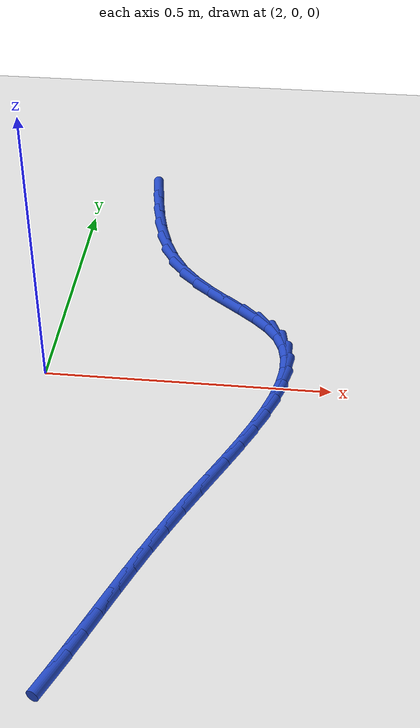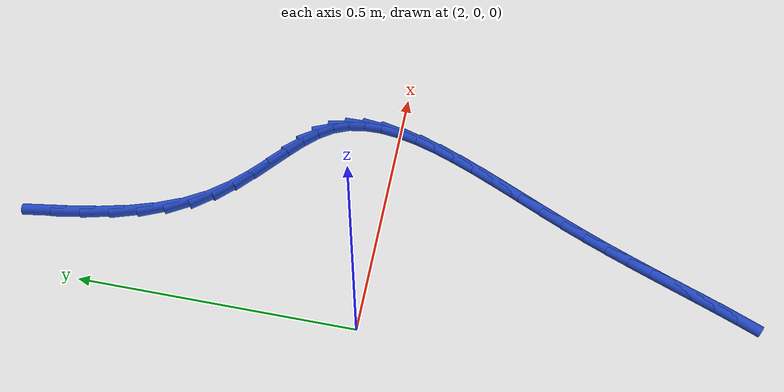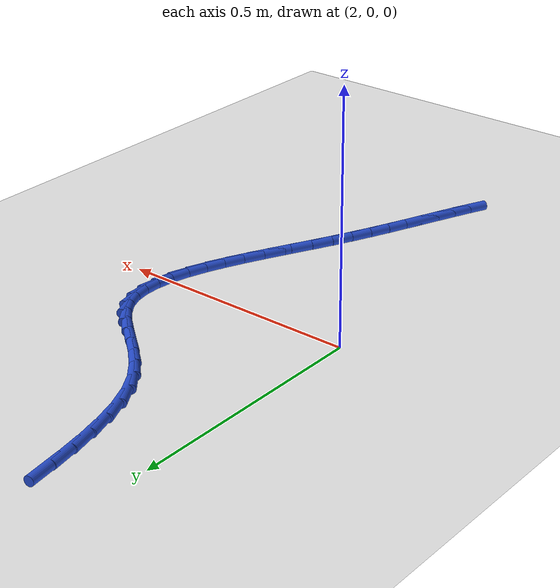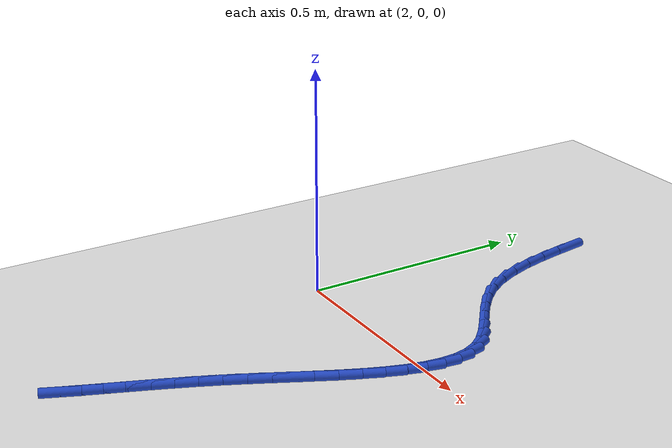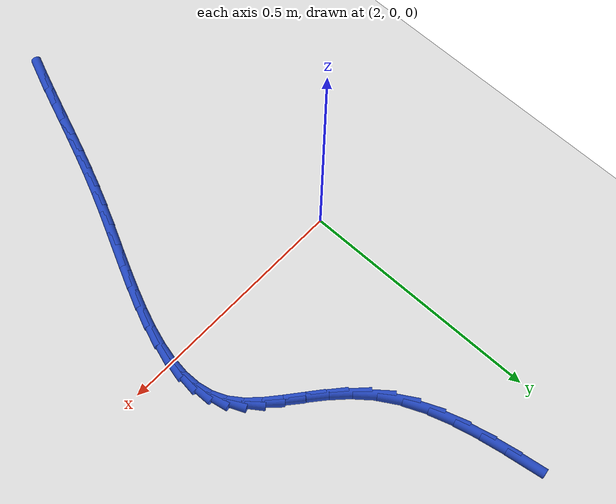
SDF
<sdf version="1.6">
 <world name="default">
  <model name="ground_plane">
   <static>1</static>
   <link name="link">
    <collision name="collision">
     <geometry><plane><normal>0 0 1</normal><size>100 100</size></plane></geometry>
     <surface><friction><ode><mu>100</mu><mu2>50</mu2></ode></friction></surface>
    </collision>
    <visual name="visual">
     <cast_shadows>0</cast_shadows>
     <geometry><plane><normal>0 0 1</normal><size>100 100</size></plane></geometry>
     <material>
      <script><uri>file://media/materials/scripts/gazebo.material</uri><name>Gazebo/WhiteGlow</name></script>
     </material>
    </visual>
   </link>
  </model>
  <model name="line">
   <link name="link_82">
    <pose>2.1171581020850545 0.6064458509517902 0.01 0 1.57 -1.4221488145944479</pose>
    <collision name="collision">
     <geometry><cylinder><radius>0.01</radius><length>0.08</length></cylinder></geometry>
    </collision>
    <visual name="visual">
     <material>
      <script><name>Gazebo/Blue</name><uri>file://media/materials/scripts/gazebo.material</uri></script>
     </material>
     <geometry><cylinder><radius>0.01</radius><length>0.08</length></cylinder></geometry>
    </visual>
   </link>
   <link name="link_83">
    <pose>2.1250702243144226 0.5536110577443482 0.01 0 1.57 -1.3852678850042155</pose>
    <collision name="collision">
     <geometry><cylinder><radius>0.01</radius><length>0.08</length></cylinder></geometry>
    </collision>
    <visual name="visual">
     <material>
      <script><name>Gazebo/Blue</name><uri>file://media/materials/scripts/gazebo.material</uri></script>
     </material>
     <geometry><cylinder><radius>0.01</radius><length>0.08</length></cylinder></geometry>
    </visual>
   </link>
   <link name="link_84">
    <pose>2.134866549538376 0.5014160021962345 0.01 0 1.57 -1.3313361154118093</pose>
    <collision name="collision">
     <geometry><cylinder><radius>0.01</radius><length>0.08</length></cylinder></geometry>
    </collision>
    <visual name="visual">
     <material>
      <script><name>Gazebo/Blue</name><uri>file://media/materials/scripts/gazebo.material</uri></script>
     </material>
     <geometry><cylinder><radius>0.01</radius><length>0.08</length></cylinder></geometry>
    </visual>
   </link>
   <link name="link_85">
    <pose>2.147190169371676 0.45093929036703095 0.01 0 1.57 -1.2566007854389787</pose>
    <collision name="collision">
     <geometry><cylinder><radius>0.01</radius><length>0.08</length></cylinder></geometry>
    </collision>
    <visual name="visual">
     <material>
      <script><name>Gazebo/Blue</name><uri>file://media/materials/scripts/gazebo.material</uri></script>
     </material>
     <geometry><cylinder><radius>0.01</radius><length>0.08</length></cylinder></geometry>
    </visual>
   </link>
   <link name="link_86">
    <pose>2.162684175429085 0.4032595283163211 0.01 0 1.57 -1.1556463646348278</pose>
    <collision name="collision">
     <geometry><cylinder><radius>0.01</radius><length>0.08</length></cylinder></geometry>
    </collision>
    <visual name="visual">
     <material>
      <script><name>Gazebo/Blue</name><uri>file://media/materials/scripts/gazebo.material</uri></script>
     </material>
     <geometry><cylinder><radius>0.01</radius><length>0.08</length></cylinder></geometry>
    </visual>
   </link>
   <link name="link_87">
    <pose>2.1819916593253623 0.35945532210368775 0.01 0 1.57 -1.0222773114358161</pose>
    <collision name="collision">
     <geometry><cylinder><radius>0.01</radius><length>0.08</length></cylinder></geometry>
    </collision>
    <visual name="visual">
     <material>
      <script><name>Gazebo/Blue</name><uri>file://media/materials/scripts/gazebo.material</uri></script>
     </material>
     <geometry><cylinder><radius>0.01</radius><length>0.08</length></cylinder></geometry>
    </visual>
   </link>
   <link name="link_88">
    <pose>2.2057406587779242 0.3205906688175745 0.01 0 1.57 -0.8783014978356316</pose>
    <collision name="collision">
     <geometry><cylinder><radius>0.01</radius><length>0.08</length></cylinder></geometry>
    </collision>
    <visual name="visual">
     <material>
      <script><name>Gazebo/Blue</name><uri>file://media/materials/scripts/gazebo.material</uri></script>
     </material>
     <geometry><cylinder><radius>0.01</radius><length>0.08</length></cylinder></geometry>
    </visual>
   </link>
   <link name="link_89">
    <pose>2.2336955181028215 0.28689139907802963 0.01 0 1.57 -0.7684052201431383</pose>
    <collision name="collision">
     <geometry><cylinder><radius>0.01</radius><length>0.08</length></cylinder></geometry>
    </collision>
    <visual name="visual">
     <material>
      <script><name>Gazebo/Blue</name><uri>file://media/materials/scripts/gazebo.material</uri></script>
     </material>
     <geometry><cylinder><radius>0.01</radius><length>0.08</length></cylinder></geometry>
    </visual>
   </link>
   <link name="link_90">
    <pose>2.264304110767659 0.257305781675815 0.01 0 1.57 -0.7002813731320996</pose>
    <collision name="collision">
     <geometry><cylinder><radius>0.01</radius><length>0.08</length></cylinder></geometry>
    </collision>
    <visual name="visual">
     <material>
      <script><name>Gazebo/Blue</name><uri>file://media/materials/scripts/gazebo.material</uri></script>
     </material>
     <geometry><cylinder><radius>0.01</radius><length>0.08</length></cylinder></geometry>
    </visual>
   </link>
   <link name="link_91">
    <pose>2.2959036270567736 0.23067467352071325 0.01 0 1.57 -0.6765843417316757</pose>
    <collision name="collision">
     <geometry><cylinder><radius>0.01</radius><length>0.08</length></cylinder></geometry>
    </collision>
    <visual name="visual">
     <material>
      <script><name>Gazebo/Blue</name><uri>file://media/materials/scripts/gazebo.material</uri></script>
     </material>
     <geometry><cylinder><radius>0.01</radius><length>0.08</length></cylinder></geometry>
    </visual>
   </link>
   <link name="link_92">
    <pose>2.3268312572545007 0.20583893152250674 0.01 0 1.57 -0.7023689670823451</pose>
    <collision name="collision">
     <geometry><cylinder><radius>0.01</radius><length>0.08</length></cylinder></geometry>
    </collision>
    <visual name="visual">
     <material>
      <script><name>Gazebo/Blue</name><uri>file://media/materials/scripts/gazebo.material</uri></script>
     </material>
     <geometry><cylinder><radius>0.01</radius><length>0.08</length></cylinder></geometry>
    </visual>
   </link>
   <link name="link_93">
    <pose>2.3554241916451772 0.18163941259097816 0.01 0 1.57 -0.7879734938389487</pose>
    <collision name="collision">
     <geometry><cylinder><radius>0.01</radius><length>0.08</length></cylinder></geometry>
    </collision>
    <visual name="visual">
     <material>
      <script><name>Gazebo/Blue</name><uri>file://media/materials/scripts/gazebo.material</uri></script>
     </material>
     <geometry><cylinder><radius>0.01</radius><length>0.08</length></cylinder></geometry>
    </visual>
   </link>
   <link name="link_94">
    <pose>2.38001962051314 0.15691697363591006 0.01 0 1.57 -0.9486336748854539</pose>
    <collision name="collision">
     <geometry><cylinder><radius>0.01</radius><length>0.08</length></cylinder></geometry>
    </collision>
    <visual name="visual">
     <material>
      <script><name>Gazebo/Blue</name><uri>file://media/materials/scripts/gazebo.material</uri></script>
     </material>
     <geometry><cylinder><radius>0.01</radius><length>0.08</length></cylinder></geometry>
    </visual>
   </link>
   <link name="link_95">
    <pose>2.3989558786714698 0.130513161372158 0.01 0 1.57 -1.1715739580049995</pose>
    <collision name="collision">
     <geometry><cylinder><radius>0.01</radius><length>0.08</length></cylinder></geometry>
    </collision>
    <visual name="visual">
     <material>
      <script><name>Gazebo/Blue</name><uri>file://media/materials/scripts/gazebo.material</uri></script>
     </material>
     <geometry><cylinder><radius>0.01</radius><length>0.08</length></cylinder></geometry>
    </visual>
   </link>
   <link name="link_96">
    <pose>2.411146772119244 0.1016163577910761 0.01 0 1.57 -1.3854615524039875</pose>
    <collision name="collision">
     <geometry><cylinder><radius>0.01</radius><length>0.08</length></cylinder></geometry>
    </collision>
    <visual name="visual">
     <material>
      <script><name>Gazebo/Blue</name><uri>file://media/materials/scripts/gazebo.material</uri></script>
     </material>
     <geometry><cylinder><radius>0.01</radius><length>0.08</length></cylinder></geometry>
    </visual>
   </link>
   <link name="link_97">
    <pose>2.4170137389841084 0.07032359160498998 0.01 0 1.57 -1.56456660841539</pose>
    <collision name="collision">
     <geometry><cylinder><radius>0.01</radius><length>0.08</length></cylinder></geometry>
    </collision>
    <visual name="visual">
     <material>
      <script><name>Gazebo/Blue</name><uri>file://media/materials/scripts/gazebo.material</uri></script>
     </material>
     <geometry><cylinder><radius>0.01</radius><length>0.08</length></cylinder></geometry>
    </visual>
   </link>
   <link name="link_98">
    <pose>2.4172220928467656 0.03687887475014785 0.01 0 1.57 1.4362648897896293</pose>
    <collision name="collision">
     <geometry><cylinder><radius>0.01</radius><length>0.08</length></cylinder></geometry>
    </collision>
    <visual name="visual">
     <material>
      <script><name>Gazebo/Blue</name><uri>file://media/materials/scripts/gazebo.material</uri></script>
     </material>
     <geometry><cylinder><radius>0.01</radius><length>0.08</length></cylinder></geometry>
    </visual>
   </link>
   <link name="link_99">
    <pose>2.4124371472879167 0.0015262191627975607 0.01 0 1.57 1.3294113588540364</pose>
    <collision name="collision">
     <geometry><cylinder><radius>0.01</radius><length>0.08</length></cylinder></geometry>
    </collision>
    <visual name="visual">
     <material>
      <script><name>Gazebo/Blue</name><uri>file://media/materials/scripts/gazebo.material</uri></script>
     </material>
     <geometry><cylinder><radius>0.01</radius><length>0.08</length></cylinder></geometry>
    </visual>
   </link>
   <link name="link_100">
    <pose>2.4033242158882646 -0.03549036322081298 0.01 0 1.57 1.2499021268180304</pose>
    <collision name="collision">
     <geometry><cylinder><radius>0.01</radius><length>0.08</length></cylinder></geometry>
    </collision>
    <visual name="visual">
     <material>
      <script><name>Gazebo/Blue</name><uri>file://media/materials/scripts/gazebo.material</uri></script>
     </material>
     <geometry><cylinder><radius>0.01</radius><length>0.08</length></cylinder></geometry>
    </visual>
   </link>
   <link name="link_101">
    <pose>2.3905486122285096 -0.07392686046443589 0.01 0 1.57 1.1918577890470754</pose>
    <collision name="collision">
     <geometry><cylinder><radius>0.01</radius><length>0.08</length></cylinder></geometry>
    </collision>
    <visual name="visual">
     <material>
      <script><name>Gazebo/Blue</name><uri>file://media/materials/scripts/gazebo.material</uri></script>
     </material>
     <geometry><cylinder><radius>0.01</radius><length>0.08</length></cylinder></geometry>
    </visual>
   </link>
   <link name="link_102">
    <pose>2.3747756498893544 -0.11353926063182336 0.01 0 1.57 1.1508160658562885</pose>
    <collision name="collision">
     <geometry><cylinder><radius>0.01</radius><length>0.08</length></cylinder></geometry>
    </collision>
    <visual name="visual">
     <material>
      <script><name>Gazebo/Blue</name><uri>file://media/materials/scripts/gazebo.material</uri></script>
     </material>
     <geometry><cylinder><radius>0.01</radius><length>0.08</length></cylinder></geometry>
    </visual>
   </link>
   <link name="link_103">
    <pose>2.356670642451502 -0.15408355178672742 0.01 0 1.57 1.1236647926919492</pose>
    <collision name="collision">
     <geometry><cylinder><radius>0.01</radius><length>0.08</length></cylinder></geometry>
    </collision>
    <visual name="visual">
     <material>
      <script><name>Gazebo/Blue</name><uri>file://media/materials/scripts/gazebo.material</uri></script>
     </material>
     <geometry><cylinder><radius>0.01</radius><length>0.08</length></cylinder></geometry>
    </visual>
   </link>
   <link name="link_104">
    <pose>2.336898903495652 -0.19531572199290032 0.01 0 1.57 1.1083945586520392</pose>
    <collision name="collision">
     <geometry><cylinder><radius>0.01</radius><length>0.08</length></cylinder></geometry>
    </collision>
    <visual name="visual">
     <material>
      <script><name>Gazebo/Blue</name><uri>file://media/materials/scripts/gazebo.material</uri></script>
     </material>
     <geometry><cylinder><radius>0.01</radius><length>0.08</length></cylinder></geometry>
    </visual>
   </link>
   <link name="link_105">
    <pose>2.3161257466025083 -0.23699175931409405 0.01 0 1.57 1.1038812625051881</pose>
    <collision name="collision">
     <geometry><cylinder><radius>0.01</radius><length>0.08</length></cylinder></geometry>
    </collision>
    <visual name="visual">
     <material>
      <script><name>Gazebo/Blue</name><uri>file://media/materials/scripts/gazebo.material</uri></script>
     </material>
     <geometry><cylinder><radius>0.01</radius><length>0.08</length></cylinder></geometry>
    </visual>
   </link>
   <link name="link_106">
    <pose>2.295016485352772 -0.278867651814061 0.01 0 1.57 1.1097494638210343</pose>
    <collision name="collision">
     <geometry><cylinder><radius>0.01</radius><length>0.08</length></cylinder></geometry>
    </collision>
    <visual name="visual">
     <material>
      <script><name>Gazebo/Blue</name><uri>file://media/materials/scripts/gazebo.material</uri></script>
     </material>
     <geometry><cylinder><radius>0.01</radius><length>0.08</length></cylinder></geometry>
    </visual>
   </link>
   <link name="link_107">
    <pose>2.2742364333271454 -0.320699387556553 0.01 0 1.57 1.1261661325132846</pose>
    <collision name="collision">
     <geometry><cylinder><radius>0.01</radius><length>0.08</length></cylinder></geometry>
    </collision>
    <visual name="visual">
     <material>
      <script><name>Gazebo/Blue</name><uri>file://media/materials/scripts/gazebo.material</uri></script>
     </material>
     <geometry><cylinder><radius>0.01</radius><length>0.08</length></cylinder></geometry>
    </visual>
   </link>
   <link name="link_108">
    <pose>2.254442195315236 -0.362244703739307 0.01 0 1.57 1.1474416400241712</pose>
    <collision name="collision">
     <geometry><cylinder><radius>0.01</radius><length>0.08</length></cylinder></geometry>
    </collision>
    <visual name="visual">
     <material>
      <script><name>Gazebo/Blue</name><uri>file://media/materials/scripts/gazebo.material</uri></script>
     </material>
     <geometry><cylinder><radius>0.01</radius><length>0.08</length></cylinder></geometry>
    </visual>
   </link>
   <link name="link_109">
    <pose>2.2359271313494644 -0.403334294155622 0.01 0 1.57 1.1649602675517254</pose>
    <collision name="collision">
     <geometry><cylinder><radius>0.01</radius><length>0.08</length></cylinder></geometry>
    </collision>
    <visual name="visual">
     <material>
      <script><name>Gazebo/Blue</name><uri>file://media/materials/scripts/gazebo.material</uri></script>
     </material>
     <geometry><cylinder><radius>0.01</radius><length>0.08</length></cylinder></geometry>
    </visual>
   </link>
   <link name="link_110">
    <pose>2.2184979311928053 -0.44389659882999943 0.01 0 1.57 1.1777884022436205</pose>
    <collision name="collision">
     <geometry><cylinder><radius>0.01</radius><length>0.08</length></cylinder></geometry>
    </collision>
    <visual name="visual">
     <material>
      <script><name>Gazebo/Blue</name><uri>file://media/materials/scripts/gazebo.material</uri></script>
     </material>
     <geometry><cylinder><radius>0.01</radius><length>0.08</length></cylinder></geometry>
    </visual>
   </link>
   <link name="link_111">
    <pose>2.2019272267169487 -0.4838668982099651 0.01 0 1.57 1.1856029650173119</pose>
    <collision name="collision">
     <geometry><cylinder><radius>0.01</radius><length>0.08</length></cylinder></geometry>
    </collision>
    <visual name="visual">
     <material>
      <script><name>Gazebo/Blue</name><uri>file://media/materials/scripts/gazebo.material</uri></script>
     </material>
     <geometry><cylinder><radius>0.01</radius><length>0.08</length></cylinder></geometry>
    </visual>
   </link>
   <link name="link_112">
    <pose>2.1859876497935837 -0.5231804727430446 0.01 0 1.57 1.1880812214970076</pose>
    <collision name="collision">
     <geometry><cylinder><radius>0.01</radius><length>0.08</length></cylinder></geometry>
    </collision>
    <visual name="visual">
     <material>
      <script><name>Gazebo/Blue</name><uri>file://media/materials/scripts/gazebo.material</uri></script>
     </material>
     <geometry><cylinder><radius>0.01</radius><length>0.08</length></cylinder></geometry>
    </visual>
   </link>
   <link name="link_113">
    <pose>2.1704518322943986 -0.561772602876763 0.01 0 1.57 1.1848965742000572</pose>
    <collision name="collision">
     <geometry><cylinder><radius>0.01</radius><length>0.08</length></cylinder></geometry>
    </collision>
    <visual name="visual">
     <material>
      <script><name>Gazebo/Blue</name><uri>file://media/materials/scripts/gazebo.material</uri></script>
     </material>
     <geometry><cylinder><radius>0.01</radius><length>0.08</length></cylinder></geometry>
    </visual>
   </link>
   <link name="link_114">
    <pose>2.1550924060910837 -0.5995785690586463 0.01 0 1.57 1.1757181383091138</pose>
    <collision name="collision">
     <geometry><cylinder><radius>0.01</radius><length>0.08</length></cylinder></geometry>
    </collision>
    <visual name="visual">
     <material>
      <script><name>Gazebo/Blue</name><uri>file://media/materials/scripts/gazebo.material</uri></script>
     </material>
     <geometry><cylinder><radius>0.01</radius><length>0.08</length></cylinder></geometry>
    </visual>
   </link>
   <link name="link_115">
    <pose>2.1396820030553263 -0.6365336517362197 0.01 0 1.57 1.1602161462108334</pose>
    <collision name="collision">
     <geometry><cylinder><radius>0.01</radius><length>0.08</length></cylinder></geometry>
    </collision>
    <visual name="visual">
     <material>
      <script><name>Gazebo/Blue</name><uri>file://media/materials/scripts/gazebo.material</uri></script>
     </material>
     <geometry><cylinder><radius>0.01</radius><length>0.08</length></cylinder></geometry>
    </visual>
   </link>
  </model>
 </world>
</sdf>
